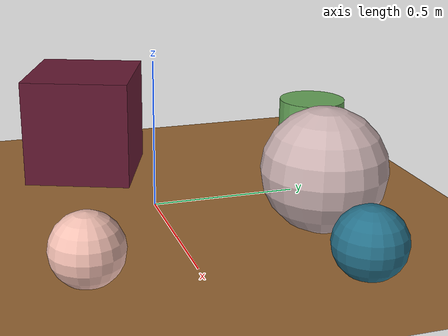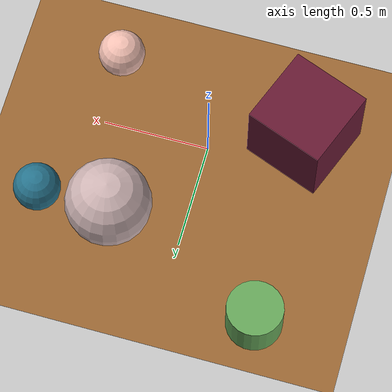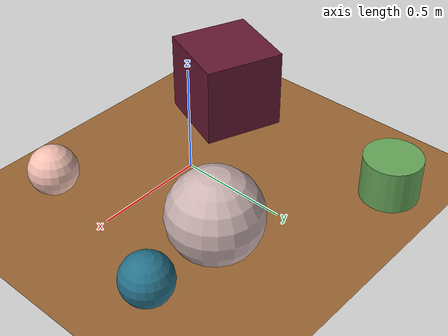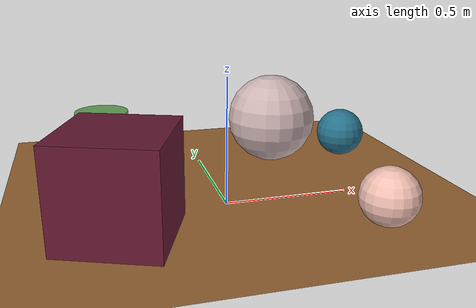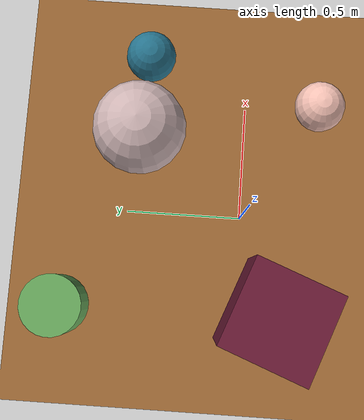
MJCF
<mujoco>
   <asset>
<texture type="skybox" builtin="gradient" rgb1="0.0 0.8 0.8" rgb2="0.3 0.4 0.6" width="500" height="500"/>
<texture name="gradient_0" builtin="gradient" rgb1="0.8 0.7 0.7" rgb2="0.8 0.7 0.7" width="500" height="500"/>
<texture name="checker_1" builtin="checker" rgb1="0.2 0.7 0.5" rgb2="0.6 0.6 0.2" width="500" height="500"/>
<texture name="flat_2" builtin="flat" rgb1="0.4 0.1 0.2" rgb2="0.4 0.1 0.2"  width="500" height="500"/>
<texture name="checker_3" builtin="checker" rgb1="0.0 0.6 0.9" rgb2="0.3 0.3 0.2" width="500" height="500"/>
<texture name="checker_4" builtin="checker" rgb1="1.0 0.5 0.6" rgb2="0.9 1.0 0.8" width="500" height="500"/><material name="gradient_0_mat" reflectance="0.23957522221436356" texture="gradient_0" texuniform="true"/>
<material name="checker_1_mat" reflectance="0.8040742659033686" texrepeat="7 7" texture="checker_1" texuniform="false" />
<material name="flat_2_mat" reflectance="0.3855579453561091" texture="flat_2" texuniform="true"/>
<material name="checker_3_mat" reflectance="0.30898203134890045" texrepeat="7 7" texture="checker_3" texuniform="false" />
<material name="checker_4_mat" reflectance="0.14258371929785663" texrepeat="3 3" texture="checker_4" texuniform="false" />
   </asset>

   <worldbody>
     <geom type="plane" size="1 1 0.1" rgba="0.6 0.4 0.2 1" />
<light pos="-0.4813991187269364 0.08261645416294683 2" dir="0 0 -1" cutoff="90" diffuse="1 1 1" specular="1 1 1"/>
<light pos="0.04540391546940681 -0.7034055544296784 2" dir="0 0 -1" cutoff="90" diffuse="1 1 1" specular="1 1 1"/>
<geom type="sphere" pos="0.34 0.46 0.2" size="0.2 0.2 0.2" material="gradient_0_mat" euler="0 0 10" />
<geom type="cylinder" pos="-0.43 0.77 0.1" size="0.13 0.1 0.1" material="checker_1_mat" euler="0 0 39" />
<geom type="box" pos="-0.42 -0.16 0.19" size="0.19 0.19 0.19" material="flat_2_mat" euler="0 0 69" />
<geom type="sphere" pos="0.69 0.44 0.11" size="0.11 0.11 0.11" material="checker_3_mat" euler="0 0 62" />
<geom type="sphere" pos="0.51 -0.32 0.11" size="0.11 0.11 0.11" material="checker_4_mat" euler="0 0 29" /><camera euler="60 0 180" fovy="60" name="camera1" pos="-0.2 -1.5 1"></camera>   </worldbody>
   <visual>
      <headlight diffuse="0.7 0.7 0.7"/>
   </visual>
</mujoco>
